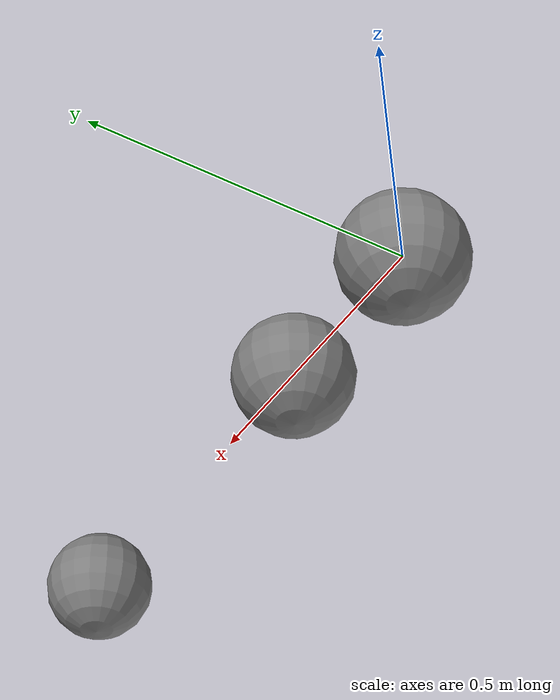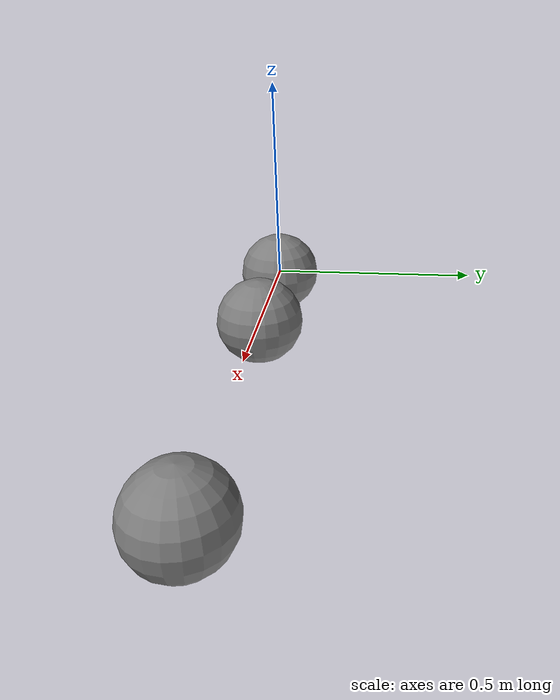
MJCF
<mujoco model="t11">
            <worldbody>
                <body name="b1" pos="0 0 0">
                    <geom name="g1a" type="sphere" size="0.1" pos="0 0 0"/>
                    <geom name="g1b" type="sphere" size="0.1" pos="0.3 0 0"/>
                </body>
                <body name="b2" pos="1 0 0">
                    <geom name="g2" type="sphere" size="0.1" pos="0 0 0"/>
                </body>
            </worldbody>
            <sensor>
                <distance name="d" body1="b1" body2="b2" cutoff="10"/>
            </sensor>
        </mujoco>
